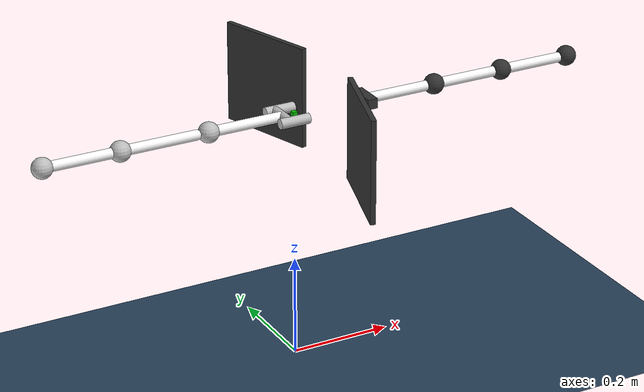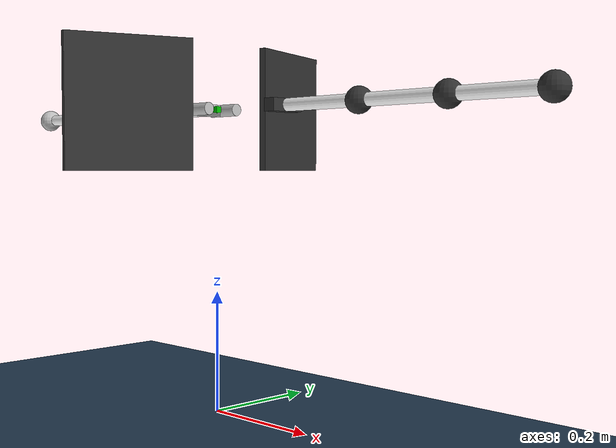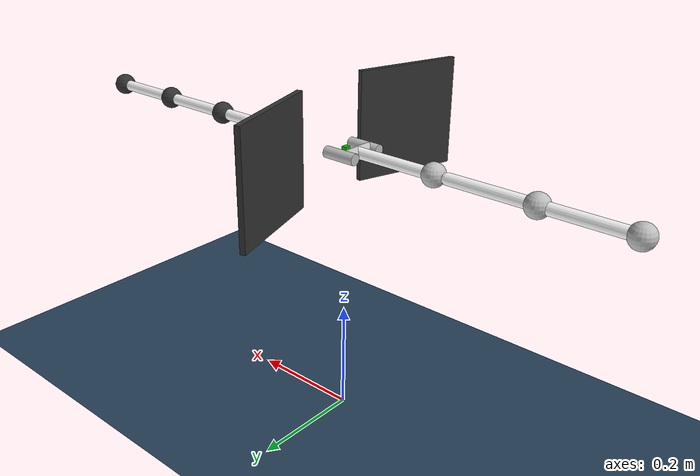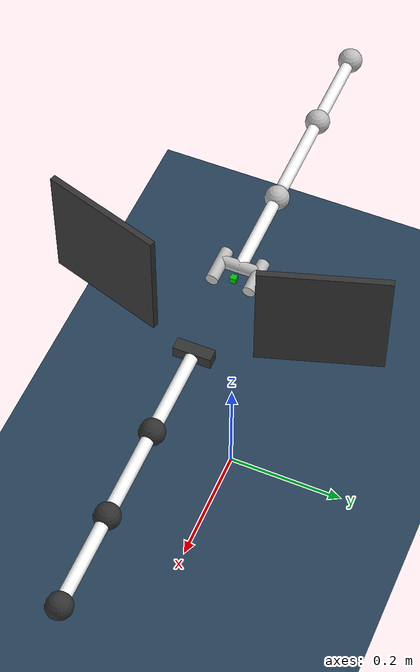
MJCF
<mujoco model="simple_arm2d">
    <compiler angle="radian" meshdir="assets" autolimits="true" />
    <option integrator="implicitfast" />

    <visual>
        <headlight diffuse="0.6 0.6 0.6" ambient="0.3 0.3 0.3" specular="0 0 0" />
        <rgba haze="0.15 0.25 0.35 1" />
        <global azimuth="120" elevation="-20" />
    </visual>

    <default>
        <default class="simple_arm2d">
            <material specular="0.5" shininess="0.25" />
            <joint armature="0.1" damping="1" axis="0 0 1" range="-2.8973 2.8973" />
            <general dyntype="none" biastype="affine" ctrlrange="-2.8973 2.8973" forcerange="-87 87" />
            <default class="visual">
                <geom contype="0" conaffinity="0" group="2" />
            </default>
            <default class="collision">
                <geom condim="4" />
            </default>
        </default>
    </default>

    <asset>
        <material class="simple_arm2d" name="white" rgba="1 1 1 1" />
        <material class="simple_arm2d" name="off_white" rgba="0.75 0.75 0.75 1" />
        <material class="simple_arm2d" name="dark" specular="0" shininess="0.25"
            rgba="0.2 0.2 0.2 1" />

        <texture type="skybox" builtin="gradient" rgb1="0.3 0.5 0.7" rgb2="0 0 0" width="512"
            height="3072" />
        <texture type="2d" name="groundplane" builtin="checker" mark="edge" rgb1="0.2 0.3 0.4"
            rgb2="0.1 0.2 0.3"
            markrgb="0.8 0.8 0.8" width="300" height="300" />
        <material name="groundplane" texture="groundplane" texuniform="true" texrepeat="5 5"
            reflectance="0.2" />
    </asset>

    <worldbody>
        <light pos="0 0 1.5" dir="0 0 -1" directional="true" />
        <geom name="floor" size="0 0 0.05" type="plane" material="groundplane" />

        <body name="actor_link1" pos="-0.5 0 0.5">
            <joint name="actor_joint1" class="simple_arm2d" range="-1.57 1.57" />
            <geom name="actor_visual_geom1" type="sphere" size="0.02" material="off_white"
                class="visual" />
            <geom name="actor_collision_geom1" type="capsule" size="0.01 0.075 0" pos="0.075 0 0"
                euler="0 -1.57079633 0" class="collision" material="white" />

            <body name="actor_link2" pos="0.15 0 0.0">
                <joint name="actor_joint2" class="simple_arm2d" />
                <geom name="actor_visual_geom2" type="sphere" size="0.02" material="off_white"
                    class="visual" />
                <geom name="actor_collision_geom2" type="capsule" size="0.01 0.075 0"
                    pos="0.075 0 0" euler="0 -1.57079633 0" class="collision" material="white" />

                <body name="actor_link3" pos="0.175 0 0.0">
                    <joint name="actor_joint3" class="simple_arm2d" />
                    <geom name="actor_visual_geom3_1" type="sphere" size="0.02" material="off_white"
                        class="visual" />
                    <geom name="actor_collision_geom3" type="capsule" size="0.01 0.075 0"
                        pos="0.075 0 0" euler="0 -1.57079633 0" class="collision" material="white" />

                    <geom name="actor_visual_geom3_2" type="cylinder" size="0.01 0.03 0"
                        euler="-1.57079633 0 0" pos="0.15 0 0" material="off_white" class="visual" />
                    <geom name="actor_visual_geom3_3" type="cylinder" size="0.01 0.03 0"
                        quat="0.5 0.5 0.5 0.5" pos="0.16 0.03 0" material="off_white"
                        class="visual" />
                    <geom name="actor_visual_geom3_4" type="cylinder" size="0.01 0.03 0"
                        quat="0.5 0.5 0.5 0.5" pos="0.16 -0.03 0" material="off_white"
                        class="visual" />

                    <body name="actor_end_effector_link" pos="0.175 0 0">
                        <site name="actor_end_effector_site" type="box" size="0.005 0.005 0.005"
                            rgba="0 0.75 0 1" />
                    </body>

                </body>
            </body>
        </body>

        <body name="observer_link1" pos="0.6 0 0.5" euler="0 0 3.141592">
            <joint name="observer_joint1" class="simple_arm2d" range="-1.57 1.57" />
            <geom name="observer_visual_geom1" type="sphere" size="0.02" material="dark"
                class="visual" />
            <geom name="observer_collision_geom1" type="capsule" size="0.01 0.075 0" pos="0.075 0 0"
                euler="0 -1.57079633 0" class="collision" material="white" />

            <body name="observer_link2" pos="0.15 0 0.0">
                <joint name="observer_joint2" class="simple_arm2d" />
                <geom name="observer_visual_geom2" type="sphere" size="0.02" material="dark"
                    class="visual" />
                <geom name="observer_collision_geom2" type="capsule" size="0.01 0.075 0"
                    pos="0.075 0 0" euler="0 -1.57079633 0" class="collision" material="white" />

                <body name="observer_link3" pos="0.15 0 0.0">
                    <joint name="observer_joint3" class="simple_arm2d" />
                    <geom name="observer_visual_geom3_1" type="sphere" size="0.02"
                        material="dark" class="visual" />
                    <geom name="observer_collision_geom3" type="capsule" size="0.01 0.075 0"
                        pos="0.075 0 0" euler="0 -1.57079633 0" class="collision" material="white" />

                    <geom name="observer_visual_geom3_2" type="box" size="0.01 0.01 0.03"
                        euler="-1.57079633 0 0" pos="0.15 0 0" material="dark" class="visual" />

                    <body name="observer_camera_link" pos="0.15 0 0">
                        <camera name="observer_camera" fovy="45"
                            quat="0.5 0.5 -0.5 -0.5" />
                    </body>

                </body>
            </body>
        </body>

        <body name="wall1" pos="0.02 0.15 0.5">
            <geom name="wall1_geom" type="box" size="0.005 0.1 0.1"
                euler="0 0 0.31" material="dark" class="collision" />
        </body>

        <body name="wall2" pos="0.03 -0.2 0.5">
            <geom name="wall2_geom" type="box" size="0.005 0.1 0.1"
                euler="0 0 -0.3" material="dark" class="collision" />
        </body>

        <body name="target" pos="0 0 0.5">
            <site name="target_site" size="0.005 0.005 0.005" rgba="0.75 0 0 1" />
        </body>

    </worldbody>

    <actuator>
        <general class="simple_arm2d" name="actor_actuator1" joint="actor_joint1" gainprm="4500"
            biasprm="0 -4500 -450" />
        <general class="simple_arm2d" name="actor_actuator2" joint="actor_joint2" gainprm="4500"
            biasprm="0 -4500 -450" />
        <general class="simple_arm2d" name="actor_actuator3" joint="actor_joint3" gainprm="3500"
            biasprm="0 -3500 -350" />

        <general class="simple_arm2d" name="observer_actuator1" joint="observer_joint1"
            gainprm="4500"
            biasprm="0 -4500 -450" />
        <general class="simple_arm2d" name="observer_actuator2" joint="observer_joint2"
            gainprm="4500" biasprm="0 -4500 -450" />
        <general class="simple_arm2d" name="observer_actuator3" joint="observer_joint3"
            gainprm="3500"
            biasprm="0 -3500 -350" />
    </actuator>

</mujoco>
